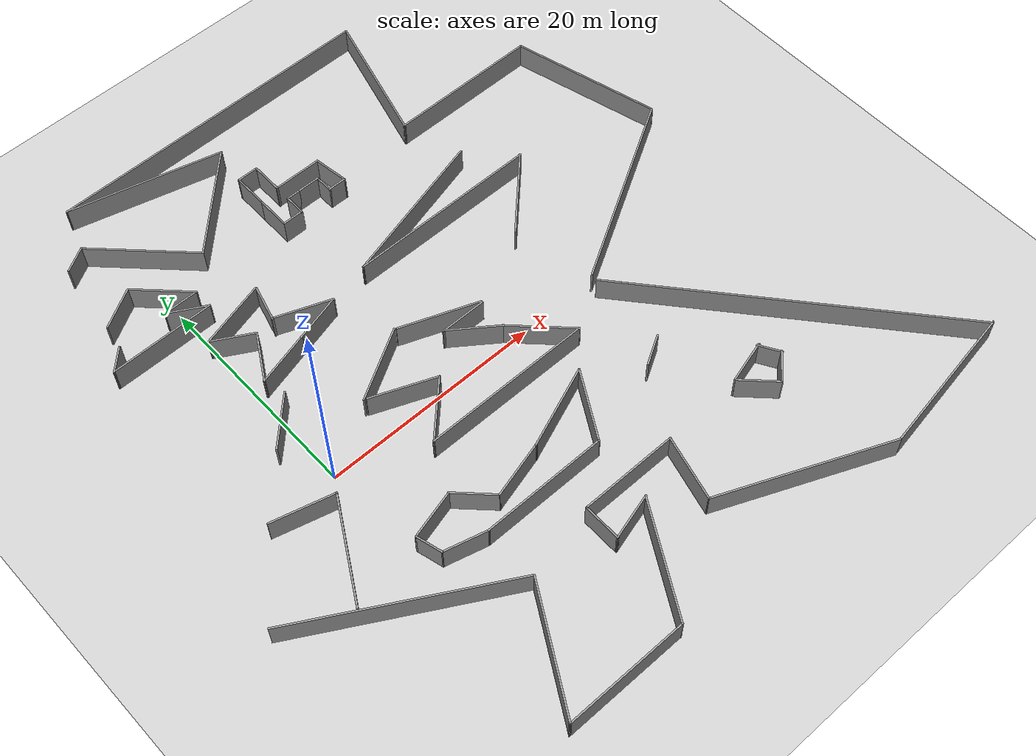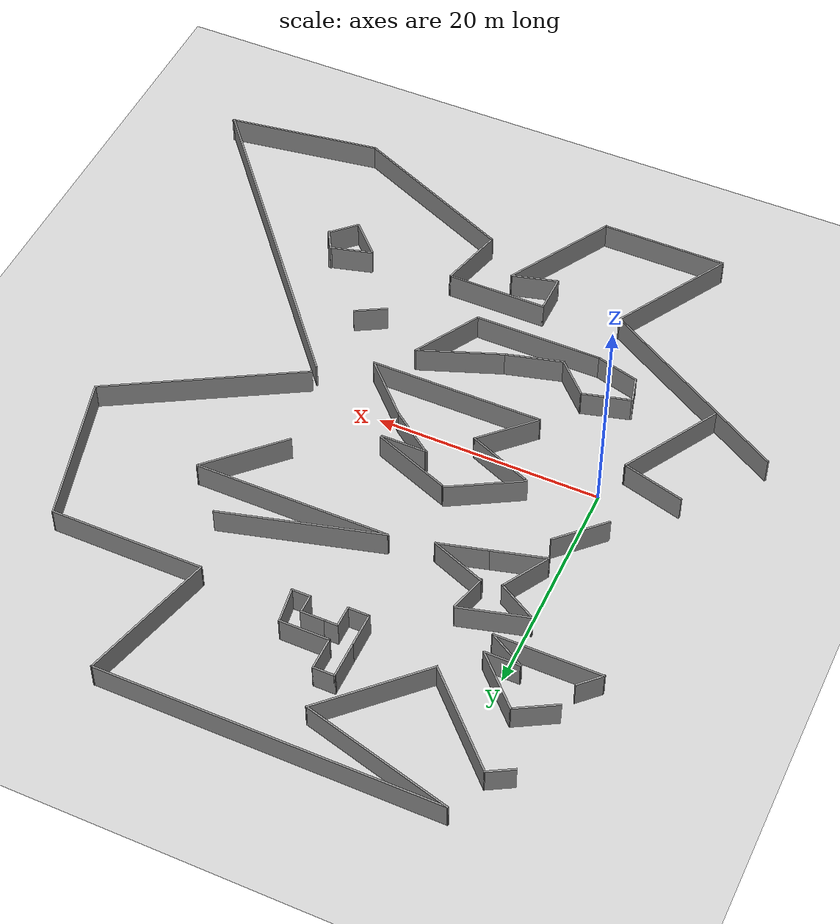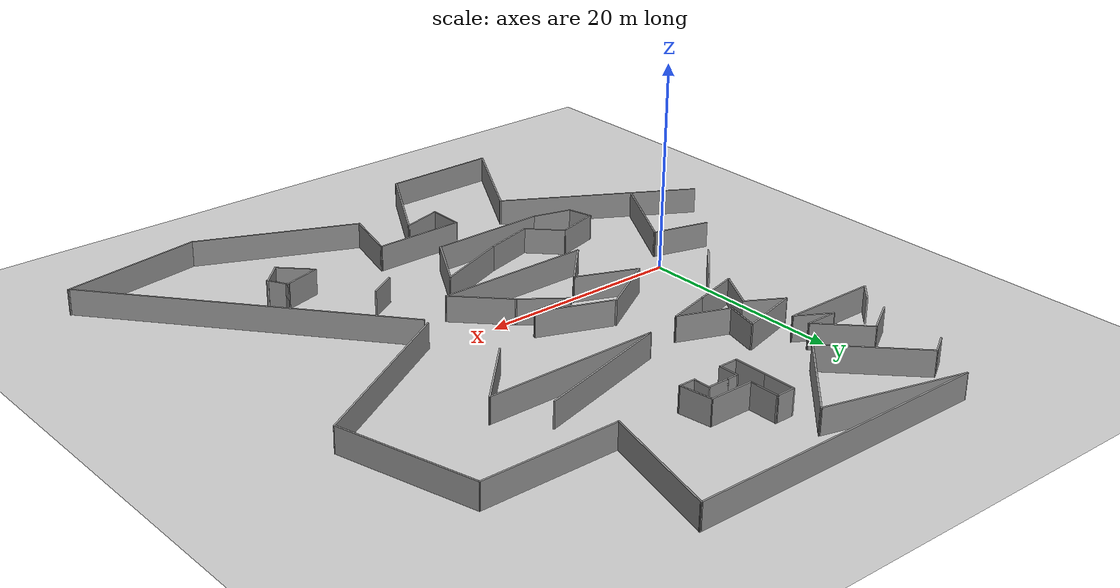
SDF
<sdf version="1.7">
 <world name="default">
  <model name="ground_plane">
   <static>1</static>
   <link name="link">
    <collision name="collision">
     <geometry><plane><normal>0 0 1</normal><size>100 100</size></plane></geometry>
     <surface><friction><ode><mu>100</mu><mu2>50</mu2></ode></friction></surface>
    </collision>
    <visual name="visual">
     <cast_shadows>0</cast_shadows>
     <geometry><plane><normal>0 0 1</normal><size>100 100</size></plane></geometry>
     <material>
      <script><uri>file://media/materials/scripts/gazebo.material</uri><name>Gazebo/Grey</name></script>
     </material>
    </visual>
   </link>
  </model>
  <model name="custommap6">
   <pose>-0.870903 3.00034 0 0 -0 0</pose>
   <link name="Wall_107">
    <collision name="Wall_107_Collision">
     <geometry><box><size>6.25 0.15 2.5</size></box></geometry>
     <pose>0 0 1.25 0 -0 0</pose>
    </collision>
    <visual name="Wall_107_Visual">
     <pose>0 0 1.25 0 -0 0</pose>
     <geometry><box><size>6.25 0.15 2.5</size></box></geometry>
     <material>
      <script><uri>file://media/materials/scripts/gazebo.material</uri><name>Gazebo/Grey</name></script>
      <ambient>1 1 1 1</ambient>
     </material>
     <meta><layer>0</layer></meta>
    </visual>
    <pose>3.45301 12.9701 0 0 -0 -2.87979</pose>
   </link>
   <link name="Wall_108">
    <collision name="Wall_108_Collision">
     <geometry><box><size>4 0.15 2.5</size></box></geometry>
     <pose>0 0 1.25 0 -0 0</pose>
    </collision>
    <visual name="Wall_108_Visual">
     <pose>0 0 1.25 0 -0 0</pose>
     <geometry><box><size>4 0.15 2.5</size></box></geometry>
     <material>
      <script><uri>file://media/materials/scripts/gazebo.material</uri><name>Gazebo/Grey</name></script>
      <ambient>1 1 1 1</ambient>
     </material>
     <meta><layer>0</layer></meta>
    </visual>
    <pose>2.17403 11.2182 0 0 -0 -0.523599</pose>
   </link>
   <link name="Wall_109">
    <collision name="Wall_109_Collision">
     <geometry><box><size>4.75 0.15 2.5</size></box></geometry>
     <pose>0 0 1.25 0 -0 0</pose>
    </collision>
    <visual name="Wall_109_Visual">
     <pose>0 0 1.25 0 -0 0</pose>
     <geometry><box><size>4.75 0.15 2.5</size></box></geometry>
     <material>
      <script><uri>file://media/materials/scripts/gazebo.material</uri><name>Gazebo/Grey</name></script>
      <ambient>1 1 1 1</ambient>
     </material>
     <meta><layer>0</layer></meta>
    </visual>
    <pose>2.69113 8.26381 0 0 -0 -2.0944</pose>
   </link>
   <link name="Wall_110">
    <collision name="Wall_110_Collision">
     <geometry><box><size>5 0.15 2.5</size></box></geometry>
     <pose>0 0 1.25 0 -0 0</pose>
    </collision>
    <visual name="Wall_110_Visual">
     <pose>0 0 1.25 0 -0 0</pose>
     <geometry><box><size>5 0.15 2.5</size></box></geometry>
     <material>
      <script><uri>file://media/materials/scripts/gazebo.material</uri><name>Gazebo/Grey</name></script>
      <ambient>1 1 1 1</ambient>
     </material>
     <meta><layer>0</layer></meta>
    </visual>
    <pose>3.8835 6.89959 0 0 -0 0.261799</pose>
   </link>
   <link name="Wall_111">
    <collision name="Wall_111_Collision">
     <geometry><box><size>4.5 0.15 2.5</size></box></geometry>
     <pose>0 0 1.25 0 -0 0</pose>
    </collision>
    <visual name="Wall_111_Visual">
     <pose>0 0 1.25 0 -0 0</pose>
     <geometry><box><size>4.5 0.15 2.5</size></box></geometry>
     <material>
      <script><uri>file://media/materials/scripts/gazebo.material</uri><name>Gazebo/Grey</name></script>
      <ambient>1 1 1 1</ambient>
     </material>
     <meta><layer>0</layer></meta>
    </visual>
    <pose>8.32676 8.09016 0 0 -0 0.261799</pose>
   </link>
   <link name="Wall_112">
    <collision name="Wall_112_Collision">
     <geometry><box><size>5.33597 0.15 2.5</size></box></geometry>
     <pose>0 0 1.25 0 -0 0</pose>
    </collision>
    <visual name="Wall_112_Visual">
     <pose>0 0 1.25 0 -0 0</pose>
     <geometry><box><size>5.33597 0.15 2.5</size></box></geometry>
     <material>
      <script><uri>file://media/materials/scripts/gazebo.material</uri><name>Gazebo/Grey</name></script>
      <ambient>1 1 1 1</ambient>
     </material>
     <meta><layer>0</layer></meta>
    </visual>
    <pose>8.01133 9.5938 0 0 -0 2.77033</pose>
   </link>
   <link name="Wall_113">
    <collision name="Wall_113_Collision">
     <geometry><box><size>3.5 0.15 2.5</size></box></geometry>
     <pose>0 0 1.25 0 -0 0</pose>
    </collision>
    <visual name="Wall_113_Visual">
     <pose>0 0 1.25 0 -0 0</pose>
     <geometry><box><size>3.5 0.15 2.5</size></box></geometry>
     <material>
      <script><uri>file://media/materials/scripts/gazebo.material</uri><name>Gazebo/Grey</name></script>
      <ambient>1 1 1 1</ambient>
     </material>
     <meta><layer>0</layer></meta>
    </visual>
    <pose>6.02853 12.0589 0 0 -0 1.309</pose>
   </link>
   <link name="Wall_115">
    <collision name="Wall_115_Collision">
     <geometry><box><size>9.75 0.15 2.5</size></box></geometry>
     <pose>0 0 1.25 0 -0 0</pose>
    </collision>
    <visual name="Wall_115_Visual">
     <pose>0 0 1.25 0 -0 0</pose>
     <geometry><box><size>9.75 0.15 2.5</size></box></geometry>
     <material>
      <script><uri>file://media/materials/scripts/gazebo.material</uri><name>Gazebo/Grey</name></script>
      <ambient>1 1 1 1</ambient>
     </material>
     <meta><layer>0</layer></meta>
    </visual>
    <pose>-2.89794 -9.40787 0 0 -0 1.0472</pose>
   </link>
   <link name="Wall_116">
    <collision name="Wall_116_Collision">
     <geometry><box><size>5.75 0.15 2.5</size></box></geometry>
     <pose>0 0 1.25 0 -0 0</pose>
    </collision>
    <visual name="Wall_116_Visual">
     <pose>0 0 1.25 0 -0 0</pose>
     <geometry><box><size>5.75 0.15 2.5</size></box></geometry>
     <material>
      <script><uri>file://media/materials/scripts/gazebo.material</uri><name>Gazebo/Grey</name></script>
      <ambient>1 1 1 1</ambient>
     </material>
     <meta><layer>0</layer></meta>
    </visual>
    <pose>-3.20254 -4.52625 0 0 -0 2.87979</pose>
   </link>
   <link name="Wall_118">
    <collision name="Wall_118_Collision">
     <geometry><box><size>5.25 0.15 2.5</size></box></geometry>
     <pose>0 0 1.25 0 -0 0</pose>
    </collision>
    <visual name="Wall_118_Visual">
     <pose>0 0 1.25 0 -0 0</pose>
     <geometry><box><size>5.25 0.15 2.5</size></box></geometry>
     <material>
      <script><uri>file://media/materials/scripts/gazebo.material</uri><name>Gazebo/Grey</name></script>
      <ambient>1 1 1 1</ambient>
     </material>
     <meta><layer>0</layer></meta>
    </visual>
    <pose>0.291453 2.59872 0 0 -0 -2.35619</pose>
   </link>
   <link name="Wall_120">
    <collision name="Wall_120_Collision">
     <geometry><box><size>14.5 0.15 2.5</size></box></geometry>
     <pose>0 0 1.25 0 -0 0</pose>
    </collision>
    <visual name="Wall_120_Visual">
     <pose>0 0 1.25 0 -0 0</pose>
     <geometry><box><size>14.5 0.15 2.5</size></box></geometry>
     <material>
      <script><uri>file://media/materials/scripts/gazebo.material</uri><name>Gazebo/Grey</name></script>
      <ambient>1 1 1 1</ambient>
     </material>
     <meta><layer>0</layer></meta>
    </visual>
    <pose>21.1782 11.341 0 0 -0 -2.87979</pose>
   </link>
   <link name="Wall_121">
    <collision name="Wall_121_Collision">
     <geometry><box><size>17.5 0.15 2.5</size></box></geometry>
     <pose>0 0 1.25 0 -0 0</pose>
    </collision>
    <visual name="Wall_121_Visual">
     <pose>0 0 1.25 0 -0 0</pose>
     <geometry><box><size>17.5 0.15 2.5</size></box></geometry>
     <material>
      <script><uri>file://media/materials/scripts/gazebo.material</uri><name>Gazebo/Grey</name></script>
      <ambient>1 1 1 1</ambient>
     </material>
     <meta><layer>0</layer></meta>
    </visual>
    <pose>22.9227 9.48395 0 0 -0 0</pose>
   </link>
   <link name="Wall_122">
    <collision name="Wall_122_Collision">
     <geometry><box><size>8.25 0.15 2.5</size></box></geometry>
     <pose>0 0 1.25 0 -0 0</pose>
    </collision>
    <visual name="Wall_122_Visual">
     <pose>0 0 1.25 0 -0 0</pose>
     <geometry><box><size>8.25 0.15 2.5</size></box></geometry>
     <material>
      <script><uri>file://media/materials/scripts/gazebo.material</uri><name>Gazebo/Grey</name></script>
      <ambient>1 1 1 1</ambient>
     </material>
     <meta><layer>0</layer></meta>
    </visual>
    <pose>28.7339 6.62017 0 0 -0 -2.35619</pose>
   </link>
   <link name="Wall_126">
    <collision name="Wall_126_Collision">
     <geometry><box><size>2.5 0.15 2.5</size></box></geometry>
     <pose>0 0 1.25 0 -0 0</pose>
    </collision>
    <visual name="Wall_126_Visual">
     <pose>0 0 1.25 0 -0 0</pose>
     <geometry><box><size>2.5 0.15 2.5</size></box></geometry>
     <material>
      <script><uri>file://media/materials/scripts/gazebo.material</uri><name>Gazebo/Grey</name></script>
      <ambient>1 1 1 1</ambient>
     </material>
     <meta><layer>0</layer></meta>
    </visual>
    <pose>-5.86162 15.7446 0 0 -0 -2.35619</pose>
   </link>
   <link name="Wall_127">
    <collision name="Wall_127_Collision">
     <geometry><box><size>9.5 0.15 2.5</size></box></geometry>
     <pose>0 0 1.25 0 -0 0</pose>
    </collision>
    <visual name="Wall_127_Visual">
     <pose>0 0 1.25 0 -0 0</pose>
     <geometry><box><size>9.5 0.15 2.5</size></box></geometry>
     <material>
      <script><uri>file://media/materials/scripts/gazebo.material</uri><name>Gazebo/Grey</name></script>
      <ambient>1 1 1 1</ambient>
     </material>
     <meta><layer>0</layer></meta>
    </visual>
    <pose>-2.01747 14.9137 0 0 -0 0</pose>
   </link>
   <link name="Wall_128">
    <collision name="Wall_128_Collision">
     <geometry><box><size>3.75 0.15 2.5</size></box></geometry>
     <pose>0 0 1.25 0 -0 0</pose>
    </collision>
    <visual name="Wall_128_Visual">
     <pose>0 0 1.25 0 -0 0</pose>
     <geometry><box><size>3.75 0.15 2.5</size></box></geometry>
     <material>
      <script><uri>file://media/materials/scripts/gazebo.material</uri><name>Gazebo/Grey</name></script>
      <ambient>1 1 1 1</ambient>
     </material>
     <meta><layer>0</layer></meta>
    </visual>
    <pose>1.09868 15.8137 0 0 -0 2.61799</pose>
   </link>
   <link name="Wall_129">
    <collision name="Wall_129_Collision">
     <geometry><box><size>3.25 0.15 2.5</size></box></geometry>
     <pose>0 0 1.25 0 -0 0</pose>
    </collision>
    <visual name="Wall_129_Visual">
     <pose>0 0 1.25 0 -0 0</pose>
     <geometry><box><size>3.25 0.15 2.5</size></box></geometry>
     <material>
      <script><uri>file://media/materials/scripts/gazebo.material</uri><name>Gazebo/Grey</name></script>
      <ambient>1 1 1 1</ambient>
     </material>
     <meta><layer>0</layer></meta>
    </visual>
    <pose>1.08984 16.7137 0 0 -0 0</pose>
   </link>
   <link name="Wall_130">
    <collision name="Wall_130_Collision">
     <geometry><box><size>5.75 0.15 2.5</size></box></geometry>
     <pose>0 0 1.25 0 -0 0</pose>
    </collision>
    <visual name="Wall_130_Visual">
     <pose>0 0 1.25 0 -0 0</pose>
     <geometry><box><size>5.75 0.15 2.5</size></box></geometry>
     <material>
      <script><uri>file://media/materials/scripts/gazebo.material</uri><name>Gazebo/Grey</name></script>
      <ambient>1 1 1 1</ambient>
     </material>
     <meta><layer>0</layer></meta>
    </visual>
    <pose>0.65994 18.6936 0 0 -0 2.35619</pose>
   </link>
   <link name="Wall_131">
    <collision name="Wall_131_Collision">
     <geometry><box><size>4 0.15 2.5</size></box></geometry>
     <pose>0 0 1.25 0 -0 0</pose>
    </collision>
    <visual name="Wall_131_Visual">
     <pose>0 0 1.25 0 -0 0</pose>
     <geometry><box><size>4 0.15 2.5</size></box></geometry>
     <material>
      <script><uri>file://media/materials/scripts/gazebo.material</uri><name>Gazebo/Grey</name></script>
      <ambient>1 1 1 1</ambient>
     </material>
     <meta><layer>0</layer></meta>
    </visual>
    <pose>-2.98706 19.711 0 0 -0 -2.61799</pose>
   </link>
   <link name="Wall_133">
    <collision name="Wall_133_Collision">
     <geometry><box><size>4.5 0.15 2.5</size></box></geometry>
     <pose>0 0 1.25 0 -0 0</pose>
    </collision>
    <visual name="Wall_133_Visual">
     <pose>0 0 1.25 0 -0 0</pose>
     <geometry><box><size>4.5 0.15 2.5</size></box></geometry>
     <material>
      <script><uri>file://media/materials/scripts/gazebo.material</uri><name>Gazebo/Grey</name></script>
      <ambient>1 1 1 1</ambient>
     </material>
     <meta><layer>0</layer></meta>
    </visual>
    <pose>16.2018 20.6841 0 0 -0 3.14159</pose>
   </link>
   <link name="Wall_134">
    <collision name="Wall_134_Collision">
     <geometry><box><size>3 0.15 2.5</size></box></geometry>
     <pose>0 0 1.25 0 -0 0</pose>
    </collision>
    <visual name="Wall_134_Visual">
     <pose>0 0 1.25 0 -0 0</pose>
     <geometry><box><size>3 0.15 2.5</size></box></geometry>
     <material>
      <script><uri>file://media/materials/scripts/gazebo.material</uri><name>Gazebo/Grey</name></script>
      <ambient>1 1 1 1</ambient>
     </material>
     <meta><layer>0</layer></meta>
    </visual>
    <pose>14.0268 22.1091 0 0 -0 1.5708</pose>
   </link>
   <link name="Wall_135">
    <collision name="Wall_135_Collision">
     <geometry><box><size>2 0.15 2.5</size></box></geometry>
     <pose>0 0 1.25 0 -0 0</pose>
    </collision>
    <visual name="Wall_135_Visual">
     <pose>0 0 1.25 0 -0 0</pose>
     <geometry><box><size>2 0.15 2.5</size></box></geometry>
     <material>
      <script><uri>file://media/materials/scripts/gazebo.material</uri><name>Gazebo/Grey</name></script>
      <ambient>1 1 1 1</ambient>
     </material>
     <meta><layer>0</layer></meta>
    </visual>
    <pose>13.1018 23.5341 0 0 -0 3.14159</pose>
   </link>
   <link name="Wall_136">
    <collision name="Wall_136_Collision">
     <geometry><box><size>3.25 0.15 2.5</size></box></geometry>
     <pose>0 0 1.25 0 -0 0</pose>
    </collision>
    <visual name="Wall_136_Visual">
     <pose>0 0 1.25 0 -0 0</pose>
     <geometry><box><size>3.25 0.15 2.5</size></box></geometry>
     <material>
      <script><uri>file://media/materials/scripts/gazebo.material</uri><name>Gazebo/Grey</name></script>
      <ambient>1 1 1 1</ambient>
     </material>
     <meta><layer>0</layer></meta>
    </visual>
    <pose>12.1768 21.9841 0 0 -0 -1.5708</pose>
   </link>
   <link name="Wall_137">
    <collision name="Wall_137_Collision">
     <geometry><box><size>3.25 0.15 2.5</size></box></geometry>
     <pose>0 0 1.25 0 -0 0</pose>
    </collision>
    <visual name="Wall_137_Visual">
     <pose>0 0 1.25 0 -0 0</pose>
     <geometry><box><size>3.25 0.15 2.5</size></box></geometry>
     <material>
      <script><uri>file://media/materials/scripts/gazebo.material</uri><name>Gazebo/Grey</name></script>
      <ambient>1 1 1 1</ambient>
     </material>
     <meta><layer>0</layer></meta>
    </visual>
    <pose>12.1768 18.8841 0 0 -0 -1.5708</pose>
   </link>
   <link name="Wall_138">
    <collision name="Wall_138_Collision">
     <geometry><box><size>2 0.15 2.5</size></box></geometry>
     <pose>0 0 1.25 0 -0 0</pose>
    </collision>
    <visual name="Wall_138_Visual">
     <pose>0 0 1.25 0 -0 0</pose>
     <geometry><box><size>2 0.15 2.5</size></box></geometry>
     <material>
      <script><uri>file://media/materials/scripts/gazebo.material</uri><name>Gazebo/Grey</name></script>
      <ambient>1 1 1 1</ambient>
     </material>
     <meta><layer>0</layer></meta>
    </visual>
    <pose>13.1018 17.3341 0 0 -0 0</pose>
   </link>
   <link name="Wall_139">
    <collision name="Wall_139_Collision">
     <geometry><box><size>2 0.15 2.5</size></box></geometry>
     <pose>0 0 1.25 0 -0 0</pose>
    </collision>
    <visual name="Wall_139_Visual">
     <pose>0 0 1.25 0 -0 0</pose>
     <geometry><box><size>2 0.15 2.5</size></box></geometry>
     <material>
      <script><uri>file://media/materials/scripts/gazebo.material</uri><name>Gazebo/Grey</name></script>
      <ambient>1 1 1 1</ambient>
     </material>
     <meta><layer>0</layer></meta>
    </visual>
    <pose>14.0268 18.2591 0 0 -0 1.5708</pose>
   </link>
   <link name="Wall_140">
    <collision name="Wall_140_Collision">
     <geometry><box><size>1.25 0.15 2.5</size></box></geometry>
     <pose>0 0 1.25 0 -0 0</pose>
    </collision>
    <visual name="Wall_140_Visual">
     <pose>0 0 1.25 0 -0 0</pose>
     <geometry><box><size>1.25 0.15 2.5</size></box></geometry>
     <material>
      <script><uri>file://media/materials/scripts/gazebo.material</uri><name>Gazebo/Grey</name></script>
      <ambient>1 1 1 1</ambient>
     </material>
     <meta><layer>0</layer></meta>
    </visual>
    <pose>14.5768 19.1841 0 0 -0 0</pose>
   </link>
   <link name="Wall_141">
    <collision name="Wall_141_Collision">
     <geometry><box><size>2.25 0.15 2.5</size></box></geometry>
     <pose>0 0 1.25 0 -0 0</pose>
    </collision>
    <visual name="Wall_141_Visual">
     <pose>0 0 1.25 0 -0 0</pose>
     <geometry><box><size>2.25 0.15 2.5</size></box></geometry>
     <material>
      <script><uri>file://media/materials/scripts/gazebo.material</uri><name>Gazebo/Grey</name></script>
      <ambient>1 1 1 1</ambient>
     </material>
     <meta><layer>0</layer></meta>
    </visual>
    <pose>16.1768 19.1841 0 0 -0 0</pose>
   </link>
   <link name="Wall_142">
    <collision name="Wall_142_Collision">
     <geometry><box><size>1.75 0.15 2.5</size></box></geometry>
     <pose>0 0 1.25 0 -0 0</pose>
    </collision>
    <visual name="Wall_142_Visual">
     <pose>0 0 1.25 0 -0 0</pose>
     <geometry><box><size>1.75 0.15 2.5</size></box></geometry>
     <material>
      <script><uri>file://media/materials/scripts/gazebo.material</uri><name>Gazebo/Grey</name></script>
      <ambient>1 1 1 1</ambient>
     </material>
     <meta><layer>0</layer></meta>
    </visual>
    <pose>17.2268 18.3841 0 0 -0 -1.5708</pose>
   </link>
   <link name="Wall_143">
    <collision name="Wall_143_Collision">
     <geometry><box><size>1.75 0.15 2.5</size></box></geometry>
     <pose>0 0 1.25 0 -0 0</pose>
    </collision>
    <visual name="Wall_143_Visual">
     <pose>0 0 1.25 0 -0 0</pose>
     <geometry><box><size>1.75 0.15 2.5</size></box></geometry>
     <material>
      <script><uri>file://media/materials/scripts/gazebo.material</uri><name>Gazebo/Grey</name></script>
      <ambient>1 1 1 1</ambient>
     </material>
     <meta><layer>0</layer></meta>
    </visual>
    <pose>18.0268 17.5841 0 0 -0 0</pose>
   </link>
   <link name="Wall_144">
    <collision name="Wall_144_Collision">
     <geometry><box><size>3.28249 0.15 2.5</size></box></geometry>
     <pose>0 0 1.25 0 -0 0</pose>
    </collision>
    <visual name="Wall_144_Visual">
     <pose>0 0 1.25 0 -0 0</pose>
     <geometry><box><size>3.28249 0.15 2.5</size></box></geometry>
     <material>
      <script><uri>file://media/materials/scripts/gazebo.material</uri><name>Gazebo/Grey</name></script>
      <ambient>1 1 1 1</ambient>
     </material>
     <meta><layer>0</layer></meta>
    </visual>
    <pose>18.6018 19.1341 0 0 -0 1.71495</pose>
   </link>
   <link name="Wall_146">
    <collision name="Wall_146_Collision">
     <geometry><box><size>5.25 0.15 2.5</size></box></geometry>
     <pose>0 0 1.25 0 -0 0</pose>
    </collision>
    <visual name="Wall_146_Visual">
     <pose>0 0 1.25 0 -0 0</pose>
     <geometry><box><size>5.25 0.15 2.5</size></box></geometry>
     <material>
      <script><uri>file://media/materials/scripts/gazebo.material</uri><name>Gazebo/Grey</name></script>
      <ambient>1 1 1 1</ambient>
     </material>
     <meta><layer>0</layer></meta>
    </visual>
    <pose>10.9542 -13.0083 0 0 -0 -2.87979</pose>
   </link>
   <link name="Wall_147">
    <collision name="Wall_147_Collision">
     <geometry><box><size>4 0.15 2.5</size></box></geometry>
     <pose>0 0 1.25 0 -0 0</pose>
    </collision>
    <visual name="Wall_147_Visual">
     <pose>0 0 1.25 0 -0 0</pose>
     <geometry><box><size>4 0.15 2.5</size></box></geometry>
     <material>
      <script><uri>file://media/materials/scripts/gazebo.material</uri><name>Gazebo/Grey</name></script>
      <ambient>1 1 1 1</ambient>
     </material>
     <meta><layer>0</layer></meta>
    </visual>
    <pose>7.12989 -12.3071 0 0 -0 2.35619</pose>
   </link>
   <link name="Wall_148">
    <collision name="Wall_148_Collision">
     <geometry><box><size>4.5 0.15 2.5</size></box></geometry>
     <pose>0 0 1.25 0 -0 0</pose>
    </collision>
    <visual name="Wall_148_Visual">
     <pose>0 0 1.25 0 -0 0</pose>
     <geometry><box><size>4.5 0.15 2.5</size></box></geometry>
     <material>
      <script><uri>file://media/materials/scripts/gazebo.material</uri><name>Gazebo/Grey</name></script>
      <ambient>1 1 1 1</ambient>
     </material>
     <meta><layer>0</layer></meta>
    </visual>
    <pose>3.66783 -11.5088 0 0 -0 -2.87979</pose>
   </link>
   <link name="Wall_149">
    <collision name="Wall_149_Collision">
     <geometry><box><size>2.5 0.15 2.5</size></box></geometry>
     <pose>0 0 1.25 0 -0 0</pose>
    </collision>
    <visual name="Wall_149_Visual">
     <pose>0 0 1.25 0 -0 0</pose>
     <geometry><box><size>2.5 0.15 2.5</size></box></geometry>
     <material>
      <script><uri>file://media/materials/scripts/gazebo.material</uri><name>Gazebo/Grey</name></script>
      <ambient>1 1 1 1</ambient>
     </material>
     <meta><layer>0</layer></meta>
    </visual>
    <pose>1.87105 -13.2067 0 0 -0 -1.309</pose>
   </link>
   <link name="Wall_150">
    <collision name="Wall_150_Collision">
     <geometry><box><size>4 0.15 2.5</size></box></geometry>
     <pose>0 0 1.25 0 -0 0</pose>
    </collision>
    <visual name="Wall_150_Visual">
     <pose>0 0 1.25 0 -0 0</pose>
     <geometry><box><size>4 0.15 2.5</size></box></geometry>
     <material>
      <script><uri>file://media/materials/scripts/gazebo.material</uri><name>Gazebo/Grey</name></script>
      <ambient>1 1 1 1</ambient>
     </material>
     <meta><layer>0</layer></meta>
    </visual>
    <pose>4.03457 -14.8399 0 0 -0 -0.261799</pose>
   </link>
   <link name="Wall_151">
    <collision name="Wall_151_Collision">
     <geometry><box><size>11.5 0.15 2.5</size></box></geometry>
     <pose>0 0 1.25 0 -0 0</pose>
    </collision>
    <visual name="Wall_151_Visual">
     <pose>0 0 1.25 0 -0 0</pose>
     <geometry><box><size>11.5 0.15 2.5</size></box></geometry>
     <material>
      <script><uri>file://media/materials/scripts/gazebo.material</uri><name>Gazebo/Grey</name></script>
      <ambient>1 1 1 1</ambient>
     </material>
     <meta><layer>0</layer></meta>
    </visual>
    <pose>11.569 -15.3382 0 0 -0 0</pose>
   </link>
   <link name="Wall_152">
    <collision name="Wall_152_Collision">
     <geometry><box><size>6.75 0.15 2.5</size></box></geometry>
     <pose>0 0 1.25 0 -0 0</pose>
    </collision>
    <visual name="Wall_152_Visual">
     <pose>0 0 1.25 0 -0 0</pose>
     <geometry><box><size>6.75 0.15 2.5</size></box></geometry>
     <material>
      <script><uri>file://media/materials/scripts/gazebo.material</uri><name>Gazebo/Grey</name></script>
      <ambient>1 1 1 1</ambient>
     </material>
     <meta><layer>0</layer></meta>
    </visual>
    <pose>18.894 -12.4803 0 0 -0 1.0472</pose>
   </link>
   <link name="Wall_153">
    <collision name="Wall_153_Collision">
     <geometry><box><size>7.78021 0.15 2.5</size></box></geometry>
     <pose>0 0 1.25 0 -0 0</pose>
    </collision>
    <visual name="Wall_153_Visual">
     <pose>0 0 1.25 0 -0 0</pose>
     <geometry><box><size>7.78021 0.15 2.5</size></box></geometry>
     <material>
      <script><uri>file://media/materials/scripts/gazebo.material</uri><name>Gazebo/Grey</name></script>
      <ambient>1 1 1 1</ambient>
     </material>
     <meta><layer>0</layer></meta>
    </visual>
    <pose>16.9806 -10.9853 0 0 -0 -2.77627</pose>
   </link>
   <link name="Wall_155">
    <collision name="Wall_155_Collision">
     <geometry><box><size>4 0.15 2.5</size></box></geometry>
     <pose>0 0 1.25 0 -0 0</pose>
    </collision>
    <visual name="Wall_155_Visual">
     <pose>0 0 1.25 0 -0 0</pose>
     <geometry><box><size>4 0.15 2.5</size></box></geometry>
     <material>
      <script><uri>file://media/materials/scripts/gazebo.material</uri><name>Gazebo/Grey</name></script>
      <ambient>1 1 1 1</ambient>
     </material>
     <meta><layer>0</layer></meta>
    </visual>
    <pose>30.8646 -18.0666 0 0 -0 -2.87979</pose>
   </link>
   <link name="Wall_156">
    <collision name="Wall_156_Collision">
     <geometry><box><size>3.76094 0.15 2.5</size></box></geometry>
     <pose>0 0 1.25 0 -0 0</pose>
    </collision>
    <visual name="Wall_156_Visual">
     <pose>0 0 1.25 0 -0 0</pose>
     <geometry><box><size>3.76094 0.15 2.5</size></box></geometry>
     <material>
      <script><uri>file://media/materials/scripts/gazebo.material</uri><name>Gazebo/Grey</name></script>
      <ambient>1 1 1 1</ambient>
     </material>
     <meta><layer>0</layer></meta>
    </visual>
    <pose>30.2818 -19.9491 0 0 -0 -0.785398</pose>
   </link>
   <link name="Wall_157">
    <collision name="Wall_157_Collision">
     <geometry><box><size>2.99248 0.15 2.5</size></box></geometry>
     <pose>0 0 1.25 0 -0 0</pose>
    </collision>
    <visual name="Wall_157_Visual">
     <pose>0 0 1.25 0 -0 0</pose>
     <geometry><box><size>2.99248 0.15 2.5</size></box></geometry>
     <material>
      <script><uri>file://media/materials/scripts/gazebo.material</uri><name>Gazebo/Grey</name></script>
      <ambient>1 1 1 1</ambient>
     </material>
     <meta><layer>0</layer></meta>
    </visual>
    <pose>32.578 -20.2355 0 0 -0 0.770832</pose>
   </link>
   <link name="Wall_158">
    <collision name="Wall_158_Collision">
     <geometry><box><size>2.25 0.15 2.5</size></box></geometry>
     <pose>0 0 1.25 0 -0 0</pose>
    </collision>
    <visual name="Wall_158_Visual">
     <pose>0 0 1.25 0 -0 0</pose>
     <geometry><box><size>2.25 0.15 2.5</size></box></geometry>
     <material>
      <script><uri>file://media/materials/scripts/gazebo.material</uri><name>Gazebo/Grey</name></script>
      <ambient>1 1 1 1</ambient>
     </material>
     <meta><layer>0</layer></meta>
    </visual>
    <pose>33.0725 -18.4436 0 0 -0 2.0944</pose>
   </link>
   <link name="Wall_160">
    <collision name="Wall_160_Collision">
     <geometry><box><size>3 0.15 2.5</size></box></geometry>
     <pose>0 0 1.25 0 -0 0</pose>
    </collision>
    <visual name="Wall_160_Visual">
     <pose>0 0 1.25 0 -0 0</pose>
     <geometry><box><size>3 0.15 2.5</size></box></geometry>
     <material>
      <script><uri>file://media/materials/scripts/gazebo.material</uri><name>Gazebo/Grey</name></script>
      <ambient>1 1 1 1</ambient>
     </material>
     <meta><layer>0</layer></meta>
    </visual>
    <pose>26.1093 -12.2546 0 0 -0 -2.61799</pose>
   </link>
   <link name="Wall_19">
    <collision name="Wall_19_Collision">
     <geometry><box><size>19.75 0.15 2.5</size></box></geometry>
     <pose>0 0 1.25 0 -0 0</pose>
    </collision>
    <visual name="Wall_19_Visual">
     <pose>0 0 1.25 0 -0 0</pose>
     <geometry><box><size>19.75 0.15 2.5</size></box></geometry>
     <material>
      <script><uri>file://media/materials/scripts/gazebo.material</uri><name>Gazebo/Grey</name></script>
      <ambient>1 1 1 1</ambient>
     </material>
     <meta><layer>0</layer></meta>
    </visual>
    <pose>-2.53776 -15.4084 0 0 -0 -0.523599</pose>
   </link>
   <link name="Wall_20">
    <collision name="Wall_20_Collision">
     <geometry><box><size>11.75 0.15 2.5</size></box></geometry>
     <pose>0 0 1.25 0 -0 0</pose>
    </collision>
    <visual name="Wall_20_Visual">
     <pose>0 0 1.25 0 -0 0</pose>
     <geometry><box><size>11.75 0.15 2.5</size></box></geometry>
     <material>
      <script><uri>file://media/materials/scripts/gazebo.material</uri><name>Gazebo/Grey</name></script>
      <ambient>1 1 1 1</ambient>
     </material>
     <meta><layer>0</layer></meta>
    </visual>
    <pose>3.04928 -25.3313 0 0 -0 -2.0944</pose>
   </link>
   <link name="Wall_21">
    <collision name="Wall_21_Collision">
     <geometry><box><size>11.25 0.15 2.5</size></box></geometry>
     <pose>0 0 1.25 0 -0 0</pose>
    </collision>
    <visual name="Wall_21_Visual">
     <pose>0 0 1.25 0 -0 0</pose>
     <geometry><box><size>11.25 0.15 2.5</size></box></geometry>
     <material>
      <script><uri>file://media/materials/scripts/gazebo.material</uri><name>Gazebo/Grey</name></script>
      <ambient>1 1 1 1</ambient>
     </material>
     <meta><layer>0</layer></meta>
    </visual>
    <pose>5.69928 -30.3543 0 0 -0 0</pose>
   </link>
   <link name="Wall_22">
    <collision name="Wall_22_Collision">
     <geometry><box><size>10.75 0.15 2.5</size></box></geometry>
     <pose>0 0 1.25 0 -0 0</pose>
    </collision>
    <visual name="Wall_22_Visual">
     <pose>0 0 1.25 0 -0 0</pose>
     <geometry><box><size>10.75 0.15 2.5</size></box></geometry>
     <material>
      <script><uri>file://media/materials/scripts/gazebo.material</uri><name>Gazebo/Grey</name></script>
      <ambient>1 1 1 1</ambient>
     </material>
     <meta><layer>0</layer></meta>
    </visual>
    <pose>13.8993 -25.7644 0 0 -0 1.0472</pose>
   </link>
   <link name="Wall_23">
    <collision name="Wall_23_Collision">
     <geometry><box><size>4.25 0.15 2.5</size></box></geometry>
     <pose>0 0 1.25 0 -0 0</pose>
    </collision>
    <visual name="Wall_23_Visual">
     <pose>0 0 1.25 0 -0 0</pose>
     <geometry><box><size>4.25 0.15 2.5</size></box></geometry>
     <material>
      <script><uri>file://media/materials/scripts/gazebo.material</uri><name>Gazebo/Grey</name></script>
      <ambient>1 1 1 1</ambient>
     </material>
     <meta><layer>0</layer></meta>
    </visual>
    <pose>14.5691 -21.705 0 0 -0 -2.87979</pose>
   </link>
   <link name="Wall_24">
    <collision name="Wall_24_Collision">
     <geometry><box><size>3.5 0.15 2.5</size></box></geometry>
     <pose>0 0 1.25 0 -0 0</pose>
    </collision>
    <visual name="Wall_24_Visual">
     <pose>0 0 1.25 0 -0 0</pose>
     <geometry><box><size>3.5 0.15 2.5</size></box></geometry>
     <material>
      <script><uri>file://media/materials/scripts/gazebo.material</uri><name>Gazebo/Grey</name></script>
      <ambient>1 1 1 1</ambient>
     </material>
     <meta><layer>0</layer></meta>
    </visual>
    <pose>12.589 -20.5606 0 0 -0 1.5708</pose>
   </link>
   <link name="Wall_25">
    <collision name="Wall_25_Collision">
     <geometry><box><size>9 0.15 2.5</size></box></geometry>
     <pose>0 0 1.25 0 -0 0</pose>
    </collision>
    <visual name="Wall_25_Visual">
     <pose>0 0 1.25 0 -0 0</pose>
     <geometry><box><size>9 0.15 2.5</size></box></geometry>
     <material>
      <script><uri>file://media/materials/scripts/gazebo.material</uri><name>Gazebo/Grey</name></script>
      <ambient>1 1 1 1</ambient>
     </material>
     <meta><layer>0</layer></meta>
    </visual>
    <pose>17.014 -18.8856 0 0 -0 0</pose>
   </link>
   <link name="Wall_26">
    <collision name="Wall_26_Collision">
     <geometry><box><size>6 0.15 2.5</size></box></geometry>
     <pose>0 0 1.25 0 -0 0</pose>
    </collision>
    <visual name="Wall_26_Visual">
     <pose>0 0 1.25 0 -0 0</pose>
     <geometry><box><size>6 0.15 2.5</size></box></geometry>
     <material>
      <script><uri>file://media/materials/scripts/gazebo.material</uri><name>Gazebo/Grey</name></script>
      <ambient>1 1 1 1</ambient>
     </material>
     <meta><layer>0</layer></meta>
    </visual>
    <pose>20.6819 -21.7109 0 0 -0 -1.8326</pose>
   </link>
   <link name="Wall_27">
    <collision name="Wall_27_Collision">
     <geometry><box><size>16.0191 0.15 2.5</size></box></geometry>
     <pose>0 0 1.25 0 -0 0</pose>
    </collision>
    <visual name="Wall_27_Visual">
     <pose>0 0 1.25 0 -0 0</pose>
     <geometry><box><size>16.0191 0.15 2.5</size></box></geometry>
     <material>
      <script><uri>file://media/materials/scripts/gazebo.material</uri><name>Gazebo/Grey</name></script>
      <ambient>1 1 1 1</ambient>
     </material>
     <meta><layer>0</layer></meta>
    </visual>
    <pose>27.1967 -27.7108 0 0 -0 -0.411621</pose>
   </link>
   <link name="Wall_28">
    <collision name="Wall_28_Collision">
     <geometry><box><size>13.8956 0.15 2.5</size></box></geometry>
     <pose>0 0 1.25 0 -0 0</pose>
    </collision>
    <visual name="Wall_28_Visual">
     <pose>0 0 1.25 0 -0 0</pose>
     <geometry><box><size>13.8956 0.15 2.5</size></box></geometry>
     <material>
      <script><uri>file://media/materials/scripts/gazebo.material</uri><name>Gazebo/Grey</name></script>
      <ambient>1 1 1 1</ambient>
     </material>
     <meta><layer>0</layer></meta>
    </visual>
    <pose>41.3707 -29.8514 0 0 -0 0.151022</pose>
   </link>
   <link name="Wall_29">
    <collision name="Wall_29_Collision">
     <geometry><box><size>32.0775 0.15 2.5</size></box></geometry>
     <pose>0 0 1.25 0 -0 0</pose>
    </collision>
    <visual name="Wall_29_Visual">
     <pose>0 0 1.25 0 -0 0</pose>
     <geometry><box><size>32.0775 0.15 2.5</size></box></geometry>
     <material>
      <script><uri>file://media/materials/scripts/gazebo.material</uri><name>Gazebo/Grey</name></script>
      <ambient>1 1 1 1</ambient>
     </material>
     <meta><layer>0</layer></meta>
    </visual>
    <pose>37.7786 -16.6033 0 0 -0 2.27038</pose>
   </link>
   <link name="Wall_32">
    <collision name="Wall_32_Collision">
     <geometry><box><size>18.5 0.15 2.5</size></box></geometry>
     <pose>0 0 1.25 0 -0 0</pose>
    </collision>
    <visual name="Wall_32_Visual">
     <pose>0 0 1.25 0 -0 0</pose>
     <geometry><box><size>18.5 0.15 2.5</size></box></geometry>
     <material>
      <script><uri>file://media/materials/scripts/gazebo.material</uri><name>Gazebo/Grey</name></script>
      <ambient>1 1 1 1</ambient>
     </material>
     <meta><layer>0</layer></meta>
    </visual>
    <pose>35.5626 0.914552 0 0 -0 0.523599</pose>
   </link>
   <link name="Wall_33">
    <collision name="Wall_33_Collision">
     <geometry><box><size>13.75 0.15 2.5</size></box></geometry>
     <pose>0 0 1.25 0 -0 0</pose>
    </collision>
    <visual name="Wall_33_Visual">
     <pose>0 0 1.25 0 -0 0</pose>
     <geometry><box><size>13.75 0.15 2.5</size></box></geometry>
     <material>
      <script><uri>file://media/materials/scripts/gazebo.material</uri><name>Gazebo/Grey</name></script>
      <ambient>1 1 1 1</ambient>
     </material>
     <meta><layer>0</layer></meta>
    </visual>
    <pose>41.7484 12.0703 0 0 -0 1.8326</pose>
   </link>
   <link name="Wall_34">
    <collision name="Wall_34_Collision">
     <geometry><box><size>13.75 0.15 2.5</size></box></geometry>
     <pose>0 0 1.25 0 -0 0</pose>
    </collision>
    <visual name="Wall_34_Visual">
     <pose>0 0 1.25 0 -0 0</pose>
     <geometry><box><size>13.75 0.15 2.5</size></box></geometry>
     <material>
      <script><uri>file://media/materials/scripts/gazebo.material</uri><name>Gazebo/Grey</name></script>
      <ambient>1 1 1 1</ambient>
     </material>
     <meta><layer>0</layer></meta>
    </visual>
    <pose>33.1884 18.6386 0 0 -0 3.14159</pose>
   </link>
   <link name="Wall_35">
    <collision name="Wall_35_Collision">
     <geometry><box><size>12.5 0.15 2.5</size></box></geometry>
     <pose>0 0 1.25 0 -0 0</pose>
    </collision>
    <visual name="Wall_35_Visual">
     <pose>0 0 1.25 0 -0 0</pose>
     <geometry><box><size>12.5 0.15 2.5</size></box></geometry>
     <material>
      <script><uri>file://media/materials/scripts/gazebo.material</uri><name>Gazebo/Grey</name></script>
      <ambient>1 1 1 1</ambient>
     </material>
     <meta><layer>0</layer></meta>
    </visual>
    <pose>27.9867 24.6032 0 0 -0 1.309</pose>
   </link>
   <link name="Wall_36">
    <collision name="Wall_36_Collision">
     <geometry><box><size>30.25 0.15 2.5</size></box></geometry>
     <pose>0 0 1.25 0 -0 0</pose>
    </collision>
    <visual name="Wall_36_Visual">
     <pose>0 0 1.25 0 -0 0</pose>
     <geometry><box><size>30.25 0.15 2.5</size></box></geometry>
     <material>
      <script><uri>file://media/materials/scripts/gazebo.material</uri><name>Gazebo/Grey</name></script>
      <ambient>1 1 1 1</ambient>
     </material>
     <meta><layer>0</layer></meta>
    </visual>
    <pose>14.5349 30.5678 0 0 -0 3.14159</pose>
   </link>
   <link name="Wall_37">
    <collision name="Wall_37_Collision">
     <geometry><box><size>14 0.15 2.5</size></box></geometry>
     <pose>0 0 1.25 0 -0 0</pose>
    </collision>
    <visual name="Wall_37_Visual">
     <pose>0 0 1.25 0 -0 0</pose>
     <geometry><box><size>14 0.15 2.5</size></box></geometry>
     <material>
      <script><uri>file://media/materials/scripts/gazebo.material</uri><name>Gazebo/Grey</name></script>
      <ambient>1 1 1 1</ambient>
     </material>
     <meta><layer>0</layer></meta>
    </visual>
    <pose>6.1739 28.7755 0 0 -0 -0.261799</pose>
   </link>
   <link name="Wall_38">
    <collision name="Wall_38_Collision">
     <geometry><box><size>10.75 0.15 2.5</size></box></geometry>
     <pose>0 0 1.25 0 -0 0</pose>
    </collision>
    <visual name="Wall_38_Visual">
     <pose>0 0 1.25 0 -0 0</pose>
     <geometry><box><size>10.75 0.15 2.5</size></box></geometry>
     <material>
      <script><uri>file://media/materials/scripts/gazebo.material</uri><name>Gazebo/Grey</name></script>
      <ambient>1 1 1 1</ambient>
     </material>
     <meta><layer>0</layer></meta>
    </visual>
    <pose>9.11527 23.2355 0 0 -0 -2.35619</pose>
   </link>
   <link name="Wall_39">
    <collision name="Wall_39_Collision">
     <geometry><box><size>10.25 0.15 2.5</size></box></geometry>
     <pose>0 0 1.25 0 -0 0</pose>
    </collision>
    <visual name="Wall_39_Visual">
     <pose>0 0 1.25 0 -0 0</pose>
     <geometry><box><size>10.25 0.15 2.5</size></box></geometry>
     <material>
      <script><uri>file://media/materials/scripts/gazebo.material</uri><name>Gazebo/Grey</name></script>
      <ambient>1 1 1 1</ambient>
     </material>
     <meta><layer>0</layer></meta>
    </visual>
    <pose>1.79671 23.0587 0 0 -0 2.35619</pose>
   </link>
   <link name="Wall_40">
    <collision name="Wall_40_Collision">
     <geometry><box><size>2.5 0.15 2.5</size></box></geometry>
     <pose>0 0 1.25 0 -0 0</pose>
    </collision>
    <visual name="Wall_40_Visual">
     <pose>0 0 1.25 0 -0 0</pose>
     <geometry><box><size>2.5 0.15 2.5</size></box></geometry>
     <material>
      <script><uri>file://media/materials/scripts/gazebo.material</uri><name>Gazebo/Grey</name></script>
      <ambient>1 1 1 1</ambient>
     </material>
     <meta><layer>0</layer></meta>
    </visual>
    <pose>-2.79176 26.0421 0 0 -0 -2.61799</pose>
   </link>
   <link name="Wall_59">
    <collision name="Wall_59_Collision">
     <geometry><box><size>7.34717 0.15 2.5</size></box></geometry>
     <pose>0 0 1.25 0 -0 0</pose>
    </collision>
    <visual name="Wall_59_Visual">
     <pose>0 0 1.25 0 -0 0</pose>
     <geometry><box><size>7.34717 0.15 2.5</size></box></geometry>
     <material>
      <script><uri>file://media/materials/scripts/gazebo.material</uri><name>Gazebo/Grey</name></script>
      <ambient>1 1 1 1</ambient>
     </material>
     <meta><layer>0</layer></meta>
    </visual>
    <pose>15.7585 1.71281 0 0 -0 2.77303</pose>
   </link>
   <link name="Wall_60">
    <collision name="Wall_60_Collision">
     <geometry><box><size>7 0.15 2.5</size></box></geometry>
     <pose>0 0 1.25 0 -0 0</pose>
    </collision>
    <visual name="Wall_60_Visual">
     <pose>0 0 1.25 0 -0 0</pose>
     <geometry><box><size>7 0.15 2.5</size></box></geometry>
     <material>
      <script><uri>file://media/materials/scripts/gazebo.material</uri><name>Gazebo/Grey</name></script>
      <ambient>1 1 1 1</ambient>
     </material>
     <meta><layer>0</layer></meta>
    </visual>
    <pose>9.2202 1.40441 0 0 -0 -2.61799</pose>
   </link>
   <link name="Wall_61">
    <collision name="Wall_61_Collision">
     <geometry><box><size>6.10578 0.15 2.5</size></box></geometry>
     <pose>0 0 1.25 0 -0 0</pose>
    </collision>
    <visual name="Wall_61_Visual">
     <pose>0 0 1.25 0 -0 0</pose>
     <geometry><box><size>6.10578 0.15 2.5</size></box></geometry>
     <material>
      <script><uri>file://media/materials/scripts/gazebo.material</uri><name>Gazebo/Grey</name></script>
      <ambient>1 1 1 1</ambient>
     </material>
     <meta><layer>0</layer></meta>
    </visual>
    <pose>9.22252 -1.55042 0 0 -0 -0.39093</pose>
   </link>
   <link name="Wall_62">
    <collision name="Wall_62_Collision">
     <geometry><box><size>6 0.15 2.5</size></box></geometry>
     <pose>0 0 1.25 0 -0 0</pose>
    </collision>
    <visual name="Wall_62_Visual">
     <pose>0 0 1.25 0 -0 0</pose>
     <geometry><box><size>6 0.15 2.5</size></box></geometry>
     <material>
      <script><uri>file://media/materials/scripts/gazebo.material</uri><name>Gazebo/Grey</name></script>
      <ambient>1 1 1 1</ambient>
     </material>
     <meta><layer>0</layer></meta>
    </visual>
    <pose>9.90745 -4.75343 0 0 -0 -2.35619</pose>
   </link>
   <link name="Wall_63">
    <collision name="Wall_63_Collision">
     <geometry><box><size>15.5 0.15 2.5</size></box></geometry>
     <pose>0 0 1.25 0 -0 0</pose>
    </collision>
    <visual name="Wall_63_Visual">
     <pose>0 0 1.25 0 -0 0</pose>
     <geometry><box><size>15.5 0.15 2.5</size></box></geometry>
     <material>
      <script><uri>file://media/materials/scripts/gazebo.material</uri><name>Gazebo/Grey</name></script>
      <ambient>1 1 1 1</ambient>
     </material>
     <meta><layer>0</layer></meta>
    </visual>
    <pose>15.5142 -6.82172 0 0 -0 0</pose>
   </link>
   <link name="Wall_64">
    <collision name="Wall_64_Collision">
     <geometry><box><size>6.25 0.15 2.5</size></box></geometry>
     <pose>0 0 1.25 0 -0 0</pose>
    </collision>
    <visual name="Wall_64_Visual">
     <pose>0 0 1.25 0 -0 0</pose>
     <geometry><box><size>6.25 0.15 2.5</size></box></geometry>
     <material>
      <script><uri>file://media/materials/scripts/gazebo.material</uri><name>Gazebo/Grey</name></script>
      <ambient>1 1 1 1</ambient>
     </material>
     <meta><layer>0</layer></meta>
    </visual>
    <pose>21.0325 -4.66504 0 0 -0 2.35619</pose>
   </link>
   <link name="Wall_65">
    <collision name="Wall_65_Collision">
     <geometry><box><size>4.84896 0.15 2.5</size></box></geometry>
     <pose>0 0 1.25 0 -0 0</pose>
    </collision>
    <visual name="Wall_65_Visual">
     <pose>0 0 1.25 0 -0 0</pose>
     <geometry><box><size>4.84896 0.15 2.5</size></box></geometry>
     <material>
      <script><uri>file://media/materials/scripts/gazebo.material</uri><name>Gazebo/Grey</name></script>
      <ambient>1 1 1 1</ambient>
     </material>
     <meta><layer>0</layer></meta>
    </visual>
    <pose>16.989 -1.10837 0 0 -0 2.50324</pose>
   </link>
   <link name="Wall_66">
    <collision name="Wall_66_Collision">
     <geometry><box><size>4.25 0.15 2.5</size></box></geometry>
     <pose>0 0 1.25 0 -0 0</pose>
    </collision>
    <visual name="Wall_66_Visual">
     <pose>0 0 1.25 0 -0 0</pose>
     <geometry><box><size>4.25 0.15 2.5</size></box></geometry>
     <material>
      <script><uri>file://media/materials/scripts/gazebo.material</uri><name>Gazebo/Grey</name></script>
      <ambient>1 1 1 1</ambient>
     </material>
     <meta><layer>0</layer></meta>
    </visual>
    <pose>17.0446 0.291633 0 0 -0 0</pose>
   </link>
   <static>1</static>
  </model>
 </world>
</sdf>
